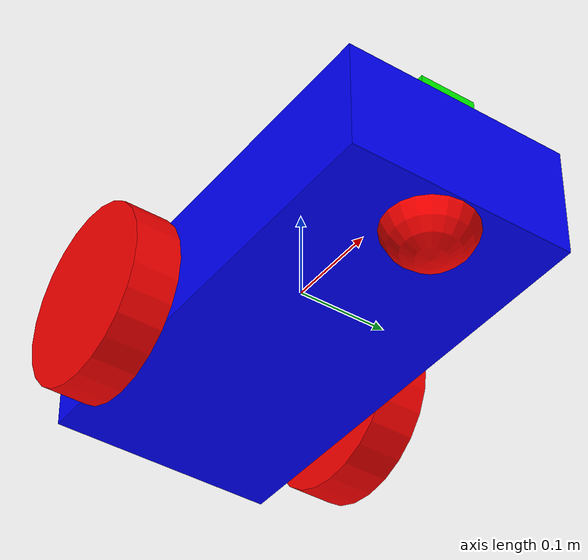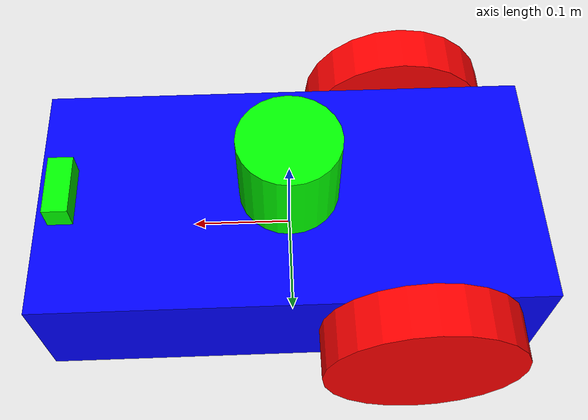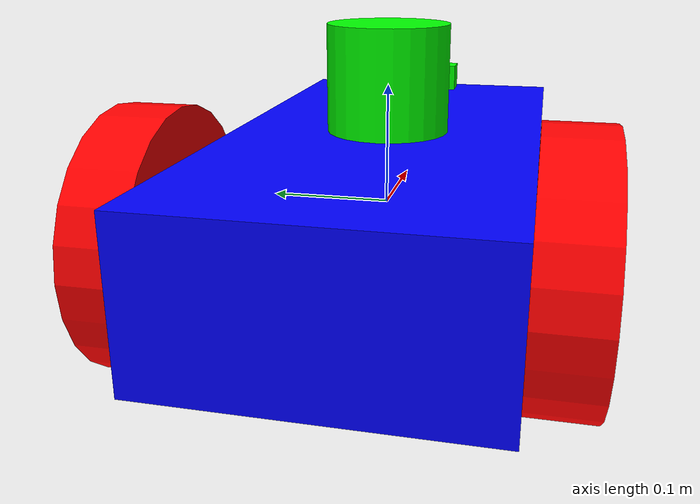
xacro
<?xml version="1.0"?>
<robot name="ddr" xmlns:xacro="http://www.ros.org/wiki/xacro">

  <xacro:include filename="$(find ddr_description)/urdf/material.xacro"/>
  <xacro:include filename="$(find ddr_description)/urdf/ddr.xacro"/>
  <xacro:include filename="$(find ddr_description)/urdf/sensors.xacro"/>
  <xacro:include filename="$(find ddr_description)/urdf/gazebo.xacro"/>

</robot>

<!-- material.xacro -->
<robot name="ddr" xmlns:xacro="http://www.ros.org/wiki/xacro">

  <material name="red">
    <color rgba="1.0 0.0 0.0 1.000"/>
  </material>

  <material name="green">
    <color rgba="0.0 1.0 0.0 1.000"/>
  </material>

  <material name="blue">
    <color rgba="0.0 0.0 1.0 1.000"/>
  </material>

</robot>

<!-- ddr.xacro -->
<robot name="ddr" xmlns:xacro="http://www.ros.org/wiki/xacro">

  <xacro:property name="chassis_length" value="0.5"/>
  <xacro:property name="chassis_width"  value="0.25"/>
  <xacro:property name="chassis_height" value="0.125"/>
  <xacro:property name="chassis_mass"   value="1.14395"/>

  <xacro:property name="wheel_radius"     value="0.1"/>
  <xacro:property name="wheel_length"     value="0.05"/>
  <xacro:property name="wheel_mass"       value="1.0"/>
  <xacro:property name="wheel_x_offset"   value="-0.125"/>
  <xacro:property name="wheel_y_offset"   value="0.15"/>

  <xacro:property name="caster_radius" value="0.05"/>
  <xacro:property name="caster_mass"   value="0.05"/>
  <xacro:property name="caster_x" value="0.2"/>
  <xacro:property name="caster_z" value="-0.05"/>

  <!-- base_link (chassis) -->

  <link name="base_link">
    <visual>
      <geometry>
        <box size="${chassis_length} ${chassis_width} ${chassis_height}"/>
      </geometry>
      <material name="blue"/>
    </visual>
    <collision>
      <geometry>
        <box size="${chassis_length} ${chassis_width} ${chassis_height}"/>
      </geometry>
    </collision>
    <inertial>
      <mass value="${chassis_mass}"/>
      <inertia ixx="0.005958" ixy="0" ixz="0"
               iyy="0.023832" iyz="0"
               izz="0.029790"/>
    </inertial>
  </link>

  <!-- Ruote motrici (differential drive) -->
  <xacro:macro name="wheel" params="prefix y_offset">
    <link name="${prefix}_wheel">
      <visual>
        <origin xyz="0 0 0" rpy="1.5707963 0 0"/>
        <geometry>
          <cylinder radius="${wheel_radius}" length="${wheel_length}"/>
        </geometry>
        <material name="red"/>
      </visual>
      <collision>
        <origin xyz="0 0 0" rpy="1.5707963 0 0"/>
        <geometry>
          <cylinder radius="${wheel_radius}" length="${wheel_length}"/>
        </geometry>
      </collision>
      <inertial>
        <mass value="${wheel_mass}"/>
        <inertia ixx="0.002708" ixy="0" ixz="0"
                 iyy="0.002708" iyz="0"
                 izz="0.005"/>
      </inertial>
    </link>

    <joint name="${prefix}_wheel_joint" type="continuous">
      <parent link="base_link"/>
      <child link="${prefix}_wheel"/>
      <origin xyz="${wheel_x_offset} ${y_offset} 0" rpy="0 0 0"/>
      <axis xyz="0 1 0"/>
    </joint>
  </xacro:macro>

  <xacro:wheel prefix="left"  y_offset="${wheel_y_offset}"/>
  <xacro:wheel prefix="right" y_offset="-${wheel_y_offset}"/>

  <!-- Caster wheel (ruota folle di appoggio) -->

  <link name="caster">
    <visual>
      <geometry>
        <sphere radius="${caster_radius}"/>
      </geometry>
      <material name="red"/>
    </visual>
    <collision>
      <geometry>
        <sphere radius="${caster_radius}"/>
      </geometry>
    </collision>
    <inertial>
      <mass value="${caster_mass}"/>
      <inertia ixx="0.001" ixy="0" ixz="0"
               iyy="0.001" iyz="0"
               izz="0.001"/>
    </inertial>
  </link>

  <joint name="caster_wheel_joint" type="fixed">
    <parent link="base_link"/>
    <child link="caster"/>
    <origin xyz="${caster_x} 0 ${caster_z}" rpy="0 0 0"/>
  </joint>

</robot>

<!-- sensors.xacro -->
<robot name="ddr" xmlns:xacro="http://www.ros.org/wiki/xacro">

  <xacro:property name="lidar_x" value="0.0"/>
  <xacro:property name="lidar_z" value="0.10625"/>

  <link name="lidar_link">
    <visual>
      <geometry>
        <cylinder radius="0.05" length="0.0875"/>
      </geometry>
      <material name="green"/>
    </visual>
    <collision>
      <geometry>
        <cylinder radius="0.05" length="0.0875"/>
      </geometry>
    </collision>
    <inertial>
      <mass value="0.1"/>
      <inertia ixx="0.0001" ixy="0" ixz="0"
               iyy="0.0001" iyz="0"
               izz="0.0001"/>
    </inertial>
  </link>

  <joint name="lidar_joint" type="fixed">
    <parent link="base_link"/>
    <child link="lidar_link"/>
    <origin xyz="${lidar_x} 0 ${lidar_z}" rpy="0 0 0"/>
  </joint>

  <gazebo reference="lidar_link">
    <sensor name="gpu_lidar" type="gpu_lidar">
      <pose>0 0 0.0375 0 0 0</pose>
      <topic>lidar</topic>
      <gz_frame_id>lidar_link</gz_frame_id>
      <update_rate>30</update_rate>
      <ray>
        <scan>
          <horizontal>
            <samples>720</samples>
            <resolution>1</resolution>
            <min_angle>-3.14159</min_angle>
            <max_angle>3.14159</max_angle>
          </horizontal>
          <vertical>
            <samples>1</samples>
            <resolution>1</resolution>
            <min_angle>0</min_angle>
            <max_angle>0</max_angle>
          </vertical>
        </scan>
        <range>
          <min>0.08</min>
          <max>10.0</max>
          <resolution>0.01</resolution>
        </range>
      </ray>
      <always_on>1</always_on>
      <visualize>true</visualize>
    </sensor>
  </gazebo>

  <!-- IMU -->

  <gazebo reference="base_link">
    <sensor name="imu_sensor" type="imu">
      <always_on>1</always_on>
      <update_rate>100</update_rate>
      <visualize>true</visualize>
      <topic>imu</topic>
    </sensor>
  </gazebo>

  <!-- Camera RGB -->

  <xacro:property name="camera_x" value="0.225"/>
  <xacro:property name="camera_z" value="0.075"/>

  <link name="camera_link">
    <visual>
      <geometry>
        <box size="0.025 0.0625 0.025"/>
      </geometry>
      <material name="green"/>
    </visual>
    <collision>
      <geometry>
        <box size="0.025 0.0625 0.025"/>
      </geometry>
    </collision>
    <inertial>
      <mass value="0.1"/>
      <inertia ixx="0.0001" ixy="0" ixz="0"
               iyy="0.0001" iyz="0"
               izz="0.0001"/>
    </inertial>
  </link>

  <joint name="camera_joint" type="fixed">
    <parent link="base_link"/>
    <child link="camera_link"/>
    <origin xyz="${camera_x} 0 ${camera_z}" rpy="0 0 0"/>
  </joint>

  <link name="camera_optical_frame"/>

  <joint name="camera_optical_joint" type="fixed">
    <parent link="camera_link"/>
    <child link="camera_optical_frame"/>
    <origin xyz="0 0 0" rpy="${-pi/2} 0 ${-pi/2}"/>
  </joint>

  <gazebo reference="camera_link">
    <sensor name="camera_sensor" type="camera">
      <pose>0 0 0 0 0 0</pose>
      <always_on>true</always_on>
      <update_rate>15</update_rate>
      <visualize>true</visualize>
      <topic>camera/image_raw</topic>
      <gz_frame_id>camera_optical_frame</gz_frame_id>
      <camera>
        <horizontal_fov>1.0</horizontal_fov>
        <image>
          <width>640</width>
          <height>320</height>
          <format>R8G8B8</format>
        </image>
        <clip>
          <near>0.05</near>
          <far>50.0</far>
        </clip>
      </camera>
    </sensor>
  </gazebo>

  <!-- Contact sensor: telaio -->

  <gazebo reference="base_link">
    <sensor name="contact_chassis" type="contact">
      <always_on>true</always_on>
      <update_rate>50</update_rate>
      <contact>
        <collision>base_link_collision</collision>
      </contact>
      <topic>contact/chassis</topic>
    </sensor>
  </gazebo>

</robot>
